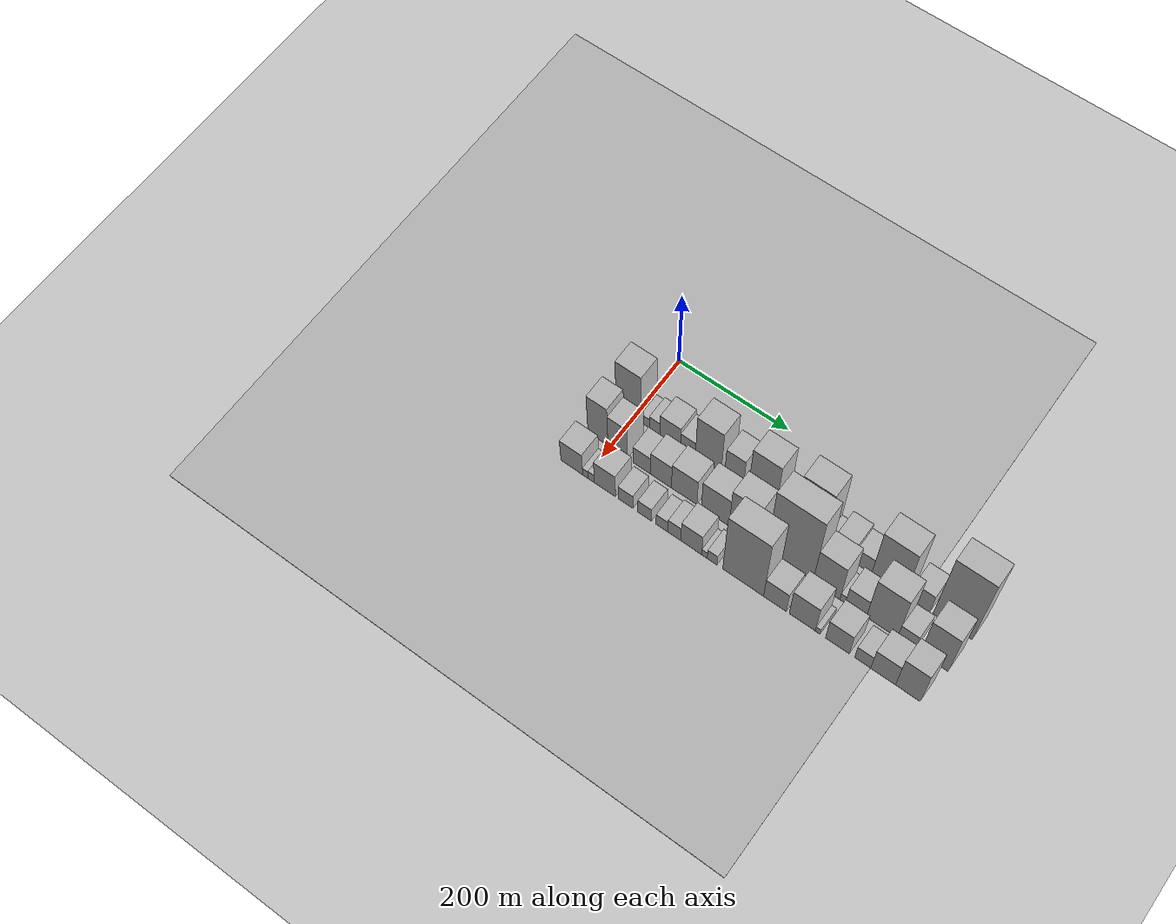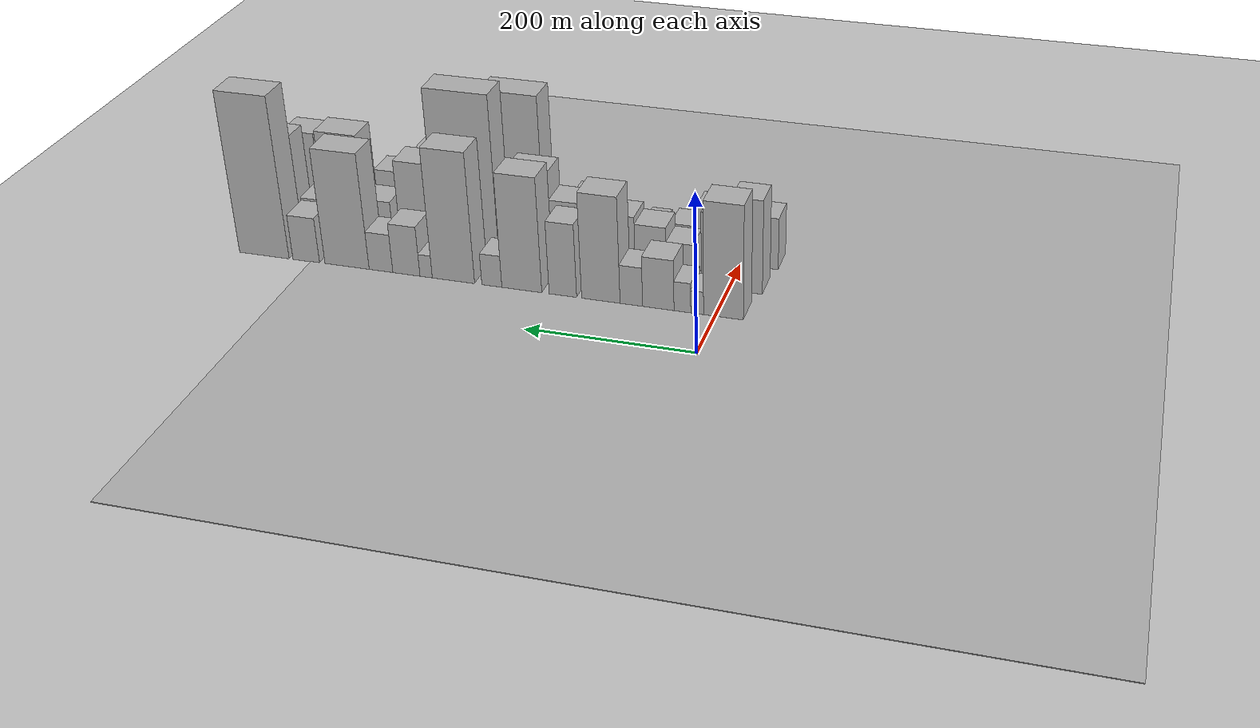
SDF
<sdf version="1.6">
 <world name="default">
  <include><name>ground_plane_1</name><uri>model://HANNAS_ground_plane</uri></include>
  <include>
   <name>ground_plane_2</name>
   <uri>model://HANNAS_ground_plane</uri>
   <pose>100 0 0  0 0 0</pose>
  </include>
  <model name="building_18">
   <static>1</static>
   <pose>100.0000 -9.4550 0 0.000000 0.000000 0.000000</pose>
   <link name="link">
    <pose>0 0 73.50 0 0 0</pose>
    <collision name="collision"><geometry><box><size>40.0000 46.5969 147.0000</size></box></geometry></collision>
    <visual name="visual">
     <cast_shadows>0</cast_shadows>
     <geometry><box><size>40.0000 46.5969 147.0000</size></box></geometry>
     <material>
      <script>
       <uri>model://HANNAS_wall/materials/scripts</uri>
       <uri>model://HANNAS_wall/materials/textures</uri>
       <name>vrc/HANNAS_wall</name>
      </script>
     </material>
    </visual>
   </link>
  </model>
  <model name="building_19">
   <static>1</static>
   <pose>100.0000 21.3931 0 0.000000 0.000000 0.000000</pose>
   <link name="link">
    <pose>0 0 15.00 0 0 0</pose>
    <collision name="collision"><geometry><box><size>40.0000 15.0992 30.0000</size></box></geometry></collision>
    <visual name="visual">
     <cast_shadows>0</cast_shadows>
     <geometry><box><size>40.0000 15.0992 30.0000</size></box></geometry>
     <material>
      <script>
       <uri>model://HANNAS_wall/materials/scripts</uri>
       <uri>model://HANNAS_wall/materials/textures</uri>
       <name>vrc/HANNAS_wall</name>
      </script>
     </material>
    </visual>
   </link>
  </model>
  <model name="building_20">
   <static>1</static>
   <pose>100.0000 38.8198 0 0.000000 0.000000 0.000000</pose>
   <link name="link">
    <pose>0 0 19.50 0 0 0</pose>
    <collision name="collision"><geometry><box><size>40.0000 19.7542 39.0000</size></box></geometry></collision>
    <visual name="visual">
     <cast_shadows>0</cast_shadows>
     <geometry><box><size>40.0000 19.7542 39.0000</size></box></geometry>
     <material>
      <script>
       <uri>model://HANNAS_wall/materials/scripts</uri>
       <uri>model://HANNAS_wall/materials/textures</uri>
       <name>vrc/HANNAS_wall</name>
      </script>
     </material>
    </visual>
   </link>
  </model>
  <model name="building_21">
   <static>1</static>
   <pose>100.0000 67.3922 0 0.000000 0.000000 0.000000</pose>
   <link name="link">
    <pose>0 0 33.00 0 0 0</pose>
    <collision name="collision"><geometry><box><size>40.0000 37.3905 66.0000</size></box></geometry></collision>
    <visual name="visual">
     <cast_shadows>0</cast_shadows>
     <geometry><box><size>40.0000 37.3905 66.0000</size></box></geometry>
     <material>
      <script>
       <uri>model://HANNAS_wall/materials/scripts</uri>
       <uri>model://HANNAS_wall/materials/textures</uri>
       <name>vrc/HANNAS_wall</name>
      </script>
     </material>
    </visual>
   </link>
  </model>
  <model name="building_22">
   <static>1</static>
   <pose>100.0000 99.5906 0 0.000000 0.000000 0.000000</pose>
   <link name="link">
    <pose>0 0 25.50 0 0 0</pose>
    <collision name="collision"><geometry><box><size>40.0000 27.0063 51.0000</size></box></geometry></collision>
    <visual name="visual">
     <cast_shadows>0</cast_shadows>
     <geometry><box><size>40.0000 27.0063 51.0000</size></box></geometry>
     <material>
      <script>
       <uri>model://HANNAS_wall/materials/scripts</uri>
       <uri>model://HANNAS_wall/materials/textures</uri>
       <name>vrc/HANNAS_wall</name>
      </script>
     </material>
    </visual>
   </link>
  </model>
  <model name="building_23">
   <static>1</static>
   <pose>100.0000 136.3201 0 0.000000 0.000000 0.000000</pose>
   <link name="link">
    <pose>0 0 69.00 0 0 0</pose>
    <collision name="collision"><geometry><box><size>40.0000 46.4527 138.0000</size></box></geometry></collision>
    <visual name="visual">
     <cast_shadows>0</cast_shadows>
     <geometry><box><size>40.0000 46.4527 138.0000</size></box></geometry>
     <material>
      <script>
       <uri>model://HANNAS_wall/materials/scripts</uri>
       <uri>model://HANNAS_wall/materials/textures</uri>
       <name>vrc/HANNAS_wall</name>
      </script>
     </material>
    </visual>
   </link>
  </model>
  <model name="building_24">
   <static>1</static>
   <pose>100.0000 182.3514 0 0.000000 0.000000 0.000000</pose>
   <link name="link">
    <pose>0 0 48.00 0 0 0</pose>
    <collision name="collision"><geometry><box><size>40.0000 33.6099 96.0000</size></box></geometry></collision>
    <visual name="visual">
     <cast_shadows>0</cast_shadows>
     <geometry><box><size>40.0000 33.6099 96.0000</size></box></geometry>
     <material>
      <script>
       <uri>model://HANNAS_wall/materials/scripts</uri>
       <uri>model://HANNAS_wall/materials/textures</uri>
       <name>vrc/HANNAS_wall</name>
      </script>
     </material>
    </visual>
   </link>
  </model>
  <model name="building_25">
   <static>1</static>
   <pose>100.0000 232.7722 0 0.000000 0.000000 0.000000</pose>
   <link name="link">
    <pose>0 0 75.00 0 0 0</pose>
    <collision name="collision"><geometry><box><size>40.0000 49.2317 150.0000</size></box></geometry></collision>
    <visual name="visual">
     <cast_shadows>0</cast_shadows>
     <geometry><box><size>40.0000 49.2317 150.0000</size></box></geometry>
     <material>
      <script>
       <uri>model://HANNAS_wall/materials/scripts</uri>
       <uri>model://HANNAS_wall/materials/textures</uri>
       <name>vrc/HANNAS_wall</name>
      </script>
     </material>
    </visual>
   </link>
  </model>
  <model name="building_26">
   <static>1</static>
   <pose>100.0000 269.8020 0 0.000000 0.000000 0.000000</pose>
   <link name="link">
    <pose>0 0 21.00 0 0 0</pose>
    <collision name="collision"><geometry><box><size>40.0000 24.8280 42.0000</size></box></geometry></collision>
    <visual name="visual">
     <cast_shadows>0</cast_shadows>
     <geometry><box><size>40.0000 24.8280 42.0000</size></box></geometry>
     <material>
      <script>
       <uri>model://HANNAS_wall/materials/scripts</uri>
       <uri>model://HANNAS_wall/materials/textures</uri>
       <name>vrc/HANNAS_wall</name>
      </script>
     </material>
    </visual>
   </link>
  </model>
  <model name="building_27">
   <static>1</static>
   <pose>100.0000 317.7965 0 0.000000 0.000000 0.000000</pose>
   <link name="link">
    <pose>0 0 85.50 0 0 0</pose>
    <collision name="collision"><geometry><box><size>40.0000 53.1611 171.0000</size></box></geometry></collision>
    <visual name="visual">
     <cast_shadows>0</cast_shadows>
     <geometry><box><size>40.0000 53.1611 171.0000</size></box></geometry>
     <material>
      <script>
       <uri>model://HANNAS_wall/materials/scripts</uri>
       <uri>model://HANNAS_wall/materials/textures</uri>
       <name>vrc/HANNAS_wall</name>
      </script>
     </material>
    </visual>
   </link>
  </model>
  <model name="building_28">
   <static>1</static>
   <pose>100.0000 352.1460 0 0.000000 0.000000 0.000000</pose>
   <link name="link">
    <pose>0 0 15.00 0 0 0</pose>
    <collision name="collision"><geometry><box><size>40.0000 15.5379 30.0000</size></box></geometry></collision>
    <visual name="visual">
     <cast_shadows>0</cast_shadows>
     <geometry><box><size>40.0000 15.5379 30.0000</size></box></geometry>
     <material>
      <script>
       <uri>model://HANNAS_wall/materials/scripts</uri>
       <uri>model://HANNAS_wall/materials/textures</uri>
       <name>vrc/HANNAS_wall</name>
      </script>
     </material>
    </visual>
   </link>
  </model>
  <model name="building_29">
   <static>1</static>
   <pose>100.0000 377.1503 0 0.000000 0.000000 0.000000</pose>
   <link name="link">
    <pose>0 0 33.00 0 0 0</pose>
    <collision name="collision"><geometry><box><size>40.0000 34.4706 66.0000</size></box></geometry></collision>
    <visual name="visual">
     <cast_shadows>0</cast_shadows>
     <geometry><box><size>40.0000 34.4706 66.0000</size></box></geometry>
     <material>
      <script>
       <uri>model://HANNAS_wall/materials/scripts</uri>
       <uri>model://HANNAS_wall/materials/textures</uri>
       <name>vrc/HANNAS_wall</name>
      </script>
     </material>
    </visual>
   </link>
  </model>
  <model name="building_30">
   <static>1</static>
   <pose>100.0000 409.5093 0 0.000000 0.000000 0.000000</pose>
   <link name="link">
    <pose>0 0 25.50 0 0 0</pose>
    <collision name="collision"><geometry><box><size>40.0000 30.2474 51.0000</size></box></geometry></collision>
    <visual name="visual">
     <cast_shadows>0</cast_shadows>
     <geometry><box><size>40.0000 30.2474 51.0000</size></box></geometry>
     <material>
      <script>
       <uri>model://HANNAS_wall/materials/scripts</uri>
       <uri>model://HANNAS_wall/materials/textures</uri>
       <name>vrc/HANNAS_wall</name>
      </script>
     </material>
    </visual>
   </link>
  </model>
  <model name="building_31">
   <static>1</static>
   <pose>100.0000 453.1934 0 0.000000 0.000000 0.000000</pose>
   <link name="link">
    <pose>0 0 76.50 0 0 0</pose>
    <collision name="collision"><geometry><box><size>40.0000 57.1208 153.0000</size></box></geometry></collision>
    <visual name="visual">
     <cast_shadows>0</cast_shadows>
     <geometry><box><size>40.0000 57.1208 153.0000</size></box></geometry>
     <material>
      <script>
       <uri>model://HANNAS_wall/materials/scripts</uri>
       <uri>model://HANNAS_wall/materials/textures</uri>
       <name>vrc/HANNAS_wall</name>
      </script>
     </material>
    </visual>
   </link>
  </model>
  <model name="building_32">
   <static>1</static>
   <pose>100.0000 506.1167 0 0.000000 0.000000 0.000000</pose>
   <link name="link">
    <pose>0 0 30.00 0 0 0</pose>
    <collision name="collision"><geometry><box><size>40.0000 34.7259 60.0000</size></box></geometry></collision>
    <visual name="visual">
     <cast_shadows>0</cast_shadows>
     <geometry><box><size>40.0000 34.7259 60.0000</size></box></geometry>
     <material>
      <script>
       <uri>model://HANNAS_wall/materials/scripts</uri>
       <uri>model://HANNAS_wall/materials/textures</uri>
       <name>vrc/HANNAS_wall</name>
      </script>
     </material>
    </visual>
   </link>
  </model>
  <model name="building_33">
   <static>1</static>
   <pose>100.0000 561.1260 0 0.000000 0.000000 0.000000</pose>
   <link name="link">
    <pose>0 0 106.50 0 0 0</pose>
    <collision name="collision"><geometry><box><size>40.0000 65.2927 213.0000</size></box></geometry></collision>
    <visual name="visual">
     <cast_shadows>0</cast_shadows>
     <geometry><box><size>40.0000 65.2927 213.0000</size></box></geometry>
     <material>
      <script>
       <uri>model://HANNAS_wall/materials/scripts</uri>
       <uri>model://HANNAS_wall/materials/textures</uri>
       <name>vrc/HANNAS_wall</name>
      </script>
     </material>
    </visual>
   </link>
  </model>
  <model name="building_51">
   <static>1</static>
   <pose>160.0000 -22.2332 0 0.000000 0.000000 0.000000</pose>
   <link name="link">
    <pose>0 0 61.50 0 0 0</pose>
    <collision name="collision"><geometry><box><size>40.0000 37.0480 123.0000</size></box></geometry></collision>
    <visual name="visual">
     <cast_shadows>0</cast_shadows>
     <geometry><box><size>40.0000 37.0480 123.0000</size></box></geometry>
     <material>
      <script>
       <uri>model://HANNAS_wall/materials/scripts</uri>
       <uri>model://HANNAS_wall/materials/textures</uri>
       <name>vrc/HANNAS_wall</name>
      </script>
     </material>
    </visual>
   </link>
  </model>
  <model name="building_52">
   <static>1</static>
   <pose>160.0000 14.3286 0 0.000000 0.000000 0.000000</pose>
   <link name="link">
    <pose>0 0 49.50 0 0 0</pose>
    <collision name="collision"><geometry><box><size>40.0000 36.0754 99.0000</size></box></geometry></collision>
    <visual name="visual">
     <cast_shadows>0</cast_shadows>
     <geometry><box><size>40.0000 36.0754 99.0000</size></box></geometry>
     <material>
      <script>
       <uri>model://HANNAS_wall/materials/scripts</uri>
       <uri>model://HANNAS_wall/materials/textures</uri>
       <name>vrc/HANNAS_wall</name>
      </script>
     </material>
    </visual>
   </link>
  </model>
  <model name="building_53">
   <static>1</static>
   <pose>160.0000 58.4407 0 0.000000 0.000000 0.000000</pose>
   <link name="link">
    <pose>0 0 27.00 0 0 0</pose>
    <collision name="collision"><geometry><box><size>40.0000 32.1488 54.0000</size></box></geometry></collision>
    <visual name="visual">
     <cast_shadows>0</cast_shadows>
     <geometry><box><size>40.0000 32.1488 54.0000</size></box></geometry>
     <material>
      <script>
       <uri>model://HANNAS_wall/materials/scripts</uri>
       <uri>model://HANNAS_wall/materials/textures</uri>
       <name>vrc/HANNAS_wall</name>
      </script>
     </material>
    </visual>
   </link>
  </model>
  <model name="building_54">
   <static>1</static>
   <pose>160.0000 93.5560 0 0.000000 0.000000 0.000000</pose>
   <link name="link">
    <pose>0 0 36.00 0 0 0</pose>
    <collision name="collision"><geometry><box><size>40.0000 38.0818 72.0000</size></box></geometry></collision>
    <visual name="visual">
     <cast_shadows>0</cast_shadows>
     <geometry><box><size>40.0000 38.0818 72.0000</size></box></geometry>
     <material>
      <script>
       <uri>model://HANNAS_wall/materials/scripts</uri>
       <uri>model://HANNAS_wall/materials/textures</uri>
       <name>vrc/HANNAS_wall</name>
      </script>
     </material>
    </visual>
   </link>
  </model>
  <model name="building_55">
   <static>1</static>
   <pose>160.0000 135.5152 0 0.000000 0.000000 0.000000</pose>
   <link name="link">
    <pose>0 0 40.50 0 0 0</pose>
    <collision name="collision"><geometry><box><size>40.0000 45.8366 81.0000</size></box></geometry></collision>
    <visual name="visual">
     <cast_shadows>0</cast_shadows>
     <geometry><box><size>40.0000 45.8366 81.0000</size></box></geometry>
     <material>
      <script>
       <uri>model://HANNAS_wall/materials/scripts</uri>
       <uri>model://HANNAS_wall/materials/textures</uri>
       <name>vrc/HANNAS_wall</name>
      </script>
     </material>
    </visual>
   </link>
  </model>
  <model name="building_56">
   <static>1</static>
   <pose>160.0000 191.2024 0 0.000000 0.000000 0.000000</pose>
   <link name="link">
    <pose>0 0 45.00 0 0 0</pose>
    <collision name="collision"><geometry><box><size>40.0000 49.5378 90.0000</size></box></geometry></collision>
    <visual name="visual">
     <cast_shadows>0</cast_shadows>
     <geometry><box><size>40.0000 49.5378 90.0000</size></box></geometry>
     <material>
      <script>
       <uri>model://HANNAS_wall/materials/scripts</uri>
       <uri>model://HANNAS_wall/materials/textures</uri>
       <name>vrc/HANNAS_wall</name>
      </script>
     </material>
    </visual>
   </link>
  </model>
  <model name="building_57">
   <static>1</static>
   <pose>160.0000 241.1132 0 0.000000 0.000000 0.000000</pose>
   <link name="link">
    <pose>0 0 63.00 0 0 0</pose>
    <collision name="collision"><geometry><box><size>40.0000 50.2837 126.0000</size></box></geometry></collision>
    <visual name="visual">
     <cast_shadows>0</cast_shadows>
     <geometry><box><size>40.0000 50.2837 126.0000</size></box></geometry>
     <material>
      <script>
       <uri>model://HANNAS_wall/materials/scripts</uri>
       <uri>model://HANNAS_wall/materials/textures</uri>
       <name>vrc/HANNAS_wall</name>
      </script>
     </material>
    </visual>
   </link>
  </model>
  <model name="building_58">
   <static>1</static>
   <pose>160.0000 274.6983 0 0.000000 0.000000 0.000000</pose>
   <link name="link">
    <pose>0 0 16.50 0 0 0</pose>
    <collision name="collision"><geometry><box><size>40.0000 16.8865 33.0000</size></box></geometry></collision>
    <visual name="visual">
     <cast_shadows>0</cast_shadows>
     <geometry><box><size>40.0000 16.8865 33.0000</size></box></geometry>
     <material>
      <script>
       <uri>model://HANNAS_wall/materials/scripts</uri>
       <uri>model://HANNAS_wall/materials/textures</uri>
       <name>vrc/HANNAS_wall</name>
      </script>
     </material>
    </visual>
   </link>
  </model>
  <model name="building_59">
   <static>1</static>
   <pose>160.0000 323.0749 0 0.000000 0.000000 0.000000</pose>
   <link name="link">
    <pose>0 0 108.00 0 0 0</pose>
    <collision name="collision"><geometry><box><size>40.0000 79.8668 216.0000</size></box></geometry></collision>
    <visual name="visual">
     <cast_shadows>0</cast_shadows>
     <geometry><box><size>40.0000 79.8668 216.0000</size></box></geometry>
     <material>
      <script>
       <uri>model://HANNAS_wall/materials/scripts</uri>
       <uri>model://HANNAS_wall/materials/textures</uri>
       <name>vrc/HANNAS_wall</name>
      </script>
     </material>
    </visual>
   </link>
  </model>
  <model name="building_60">
   <static>1</static>
   <pose>160.0000 386.0274 0 0.000000 0.000000 0.000000</pose>
   <link name="link">
    <pose>0 0 58.50 0 0 0</pose>
    <collision name="collision"><geometry><box><size>40.0000 46.0381 117.0000</size></box></geometry></collision>
    <visual name="visual">
     <cast_shadows>0</cast_shadows>
     <geometry><box><size>40.0000 46.0381 117.0000</size></box></geometry>
     <material>
      <script>
       <uri>model://HANNAS_wall/materials/scripts</uri>
       <uri>model://HANNAS_wall/materials/textures</uri>
       <name>vrc/HANNAS_wall</name>
      </script>
     </material>
    </visual>
   </link>
  </model>
  <model name="building_61">
   <static>1</static>
   <pose>160.0000 413.8816 0 0.000000 0.000000 0.000000</pose>
   <link name="link">
    <pose>0 0 12.00 0 0 0</pose>
    <collision name="collision"><geometry><box><size>40.0000 9.6703 24.0000</size></box></geometry></collision>
    <visual name="visual">
     <cast_shadows>0</cast_shadows>
     <geometry><box><size>40.0000 9.6703 24.0000</size></box></geometry>
     <material>
      <script>
       <uri>model://HANNAS_wall/materials/scripts</uri>
       <uri>model://HANNAS_wall/materials/textures</uri>
       <name>vrc/HANNAS_wall</name>
      </script>
     </material>
    </visual>
   </link>
  </model>
  <model name="building_62">
   <static>1</static>
   <pose>160.0000 436.4338 0 0.000000 0.000000 0.000000</pose>
   <link name="link">
    <pose>0 0 30.00 0 0 0</pose>
    <collision name="collision"><geometry><box><size>40.0000 35.4341 60.0000</size></box></geometry></collision>
    <visual name="visual">
     <cast_shadows>0</cast_shadows>
     <geometry><box><size>40.0000 35.4341 60.0000</size></box></geometry>
     <material>
      <script>
       <uri>model://HANNAS_wall/materials/scripts</uri>
       <uri>model://HANNAS_wall/materials/textures</uri>
       <name>vrc/HANNAS_wall</name>
      </script>
     </material>
    </visual>
   </link>
  </model>
  <model name="building_63">
   <static>1</static>
   <pose>160.0000 480.3982 0 0.000000 0.000000 0.000000</pose>
   <link name="link">
    <pose>0 0 72.00 0 0 0</pose>
    <collision name="collision"><geometry><box><size>40.0000 52.4947 144.0000</size></box></geometry></collision>
    <visual name="visual">
     <cast_shadows>0</cast_shadows>
     <geometry><box><size>40.0000 52.4947 144.0000</size></box></geometry>
     <material>
      <script>
       <uri>model://HANNAS_wall/materials/scripts</uri>
       <uri>model://HANNAS_wall/materials/textures</uri>
       <name>vrc/HANNAS_wall</name>
      </script>
     </material>
    </visual>
   </link>
  </model>
  <model name="building_64">
   <static>1</static>
   <pose>160.0000 521.5439 0 0.000000 0.000000 0.000000</pose>
   <link name="link">
    <pose>0 0 25.50 0 0 0</pose>
    <collision name="collision"><geometry><box><size>40.0000 29.7968 51.0000</size></box></geometry></collision>
    <visual name="visual">
     <cast_shadows>0</cast_shadows>
     <geometry><box><size>40.0000 29.7968 51.0000</size></box></geometry>
     <material>
      <script>
       <uri>model://HANNAS_wall/materials/scripts</uri>
       <uri>model://HANNAS_wall/materials/textures</uri>
       <name>vrc/HANNAS_wall</name>
      </script>
     </material>
    </visual>
   </link>
  </model>
  <model name="building_65">
   <static>1</static>
   <pose>160.0000 567.6421 0 0.000000 0.000000 0.000000</pose>
   <link name="link">
    <pose>0 0 64.50 0 0 0</pose>
    <collision name="collision"><geometry><box><size>40.0000 46.3996 129.0000</size></box></geometry></collision>
    <visual name="visual">
     <cast_shadows>0</cast_shadows>
     <geometry><box><size>40.0000 46.3996 129.0000</size></box></geometry>
     <material>
      <script>
       <uri>model://HANNAS_wall/materials/scripts</uri>
       <uri>model://HANNAS_wall/materials/textures</uri>
       <name>vrc/HANNAS_wall</name>
      </script>
     </material>
    </visual>
   </link>
  </model>
  <model name="building_82">
   <static>1</static>
   <pose>220.0000 -25.9432 0 0.000000 0.000000 0.000000</pose>
   <link name="link">
    <pose>0 0 34.50 0 0 0</pose>
    <collision name="collision"><geometry><box><size>40.0000 40.1114 69.0000</size></box></geometry></collision>
    <visual name="visual">
     <cast_shadows>0</cast_shadows>
     <geometry><box><size>40.0000 40.1114 69.0000</size></box></geometry>
     <material>
      <script>
       <uri>model://HANNAS_wall/materials/scripts</uri>
       <uri>model://HANNAS_wall/materials/textures</uri>
       <name>vrc/HANNAS_wall</name>
      </script>
     </material>
    </visual>
   </link>
  </model>
  <model name="building_83">
   <static>1</static>
   <pose>220.0000 -0.6348 0 0.000000 0.000000 0.000000</pose>
   <link name="link">
    <pose>0 0 12.00 0 0 0</pose>
    <collision name="collision"><geometry><box><size>40.0000 10.5053 24.0000</size></box></geometry></collision>
    <visual name="visual">
     <cast_shadows>0</cast_shadows>
     <geometry><box><size>40.0000 10.5053 24.0000</size></box></geometry>
     <material>
      <script>
       <uri>model://HANNAS_wall/materials/scripts</uri>
       <uri>model://HANNAS_wall/materials/textures</uri>
       <name>vrc/HANNAS_wall</name>
      </script>
     </material>
    </visual>
   </link>
  </model>
  <model name="building_84">
   <static>1</static>
   <pose>220.0000 10.1828 0 0.000000 0.000000 0.000000</pose>
   <link name="link">
    <pose>0 0 13.50 0 0 0</pose>
    <collision name="collision"><geometry><box><size>40.0000 11.1299 27.0000</size></box></geometry></collision>
    <visual name="visual">
     <cast_shadows>0</cast_shadows>
     <geometry><box><size>40.0000 11.1299 27.0000</size></box></geometry>
     <material>
      <script>
       <uri>model://HANNAS_wall/materials/scripts</uri>
       <uri>model://HANNAS_wall/materials/textures</uri>
       <name>vrc/HANNAS_wall</name>
      </script>
     </material>
    </visual>
   </link>
  </model>
  <model name="building_85">
   <static>1</static>
   <pose>220.0000 35.1063 0 0.000000 0.000000 0.000000</pose>
   <link name="link">
    <pose>0 0 36.00 0 0 0</pose>
    <collision name="collision"><geometry><box><size>40.0000 38.7172 72.0000</size></box></geometry></collision>
    <visual name="visual">
     <cast_shadows>0</cast_shadows>
     <geometry><box><size>40.0000 38.7172 72.0000</size></box></geometry>
     <material>
      <script>
       <uri>model://HANNAS_wall/materials/scripts</uri>
       <uri>model://HANNAS_wall/materials/textures</uri>
       <name>vrc/HANNAS_wall</name>
      </script>
     </material>
    </visual>
   </link>
  </model>
  <model name="building_86">
   <static>1</static>
   <pose>220.0000 72.7952 0 0.000000 0.000000 0.000000</pose>
   <link name="link">
    <pose>0 0 22.50 0 0 0</pose>
    <collision name="collision"><geometry><box><size>40.0000 26.6606 45.0000</size></box></geometry></collision>
    <visual name="visual">
     <cast_shadows>0</cast_shadows>
     <geometry><box><size>40.0000 26.6606 45.0000</size></box></geometry>
     <material>
      <script>
       <uri>model://HANNAS_wall/materials/scripts</uri>
       <uri>model://HANNAS_wall/materials/textures</uri>
       <name>vrc/HANNAS_wall</name>
      </script>
     </material>
    </visual>
   </link>
  </model>
  <model name="building_87">
   <static>1</static>
   <pose>220.0000 107.5004 0 0.000000 0.000000 0.000000</pose>
   <link name="link">
    <pose>0 0 21.00 0 0 0</pose>
    <collision name="collision"><geometry><box><size>40.0000 24.7497 42.0000</size></box></geometry></collision>
    <visual name="visual">
     <cast_shadows>0</cast_shadows>
     <geometry><box><size>40.0000 24.7497 42.0000</size></box></geometry>
     <material>
      <script>
       <uri>model://HANNAS_wall/materials/scripts</uri>
       <uri>model://HANNAS_wall/materials/textures</uri>
       <name>vrc/HANNAS_wall</name>
      </script>
     </material>
    </visual>
   </link>
  </model>
  <model name="building_88">
   <static>1</static>
   <pose>220.0000 138.5239 0 0.000000 0.000000 0.000000</pose>
   <link name="link">
    <pose>0 0 18.00 0 0 0</pose>
    <collision name="collision"><geometry><box><size>40.0000 21.2973 36.0000</size></box></geometry></collision>
    <visual name="visual">
     <cast_shadows>0</cast_shadows>
     <geometry><box><size>40.0000 21.2973 36.0000</size></box></geometry>
     <material>
      <script>
       <uri>model://HANNAS_wall/materials/scripts</uri>
       <uri>model://HANNAS_wall/materials/textures</uri>
       <name>vrc/HANNAS_wall</name>
      </script>
     </material>
    </visual>
   </link>
  </model>
  <model name="building_89">
   <static>1</static>
   <pose>220.0000 160.6570 0 0.000000 0.000000 0.000000</pose>
   <link name="link">
    <pose>0 0 22.50 0 0 0</pose>
    <collision name="collision"><geometry><box><size>40.0000 22.9689 45.0000</size></box></geometry></collision>
    <visual name="visual">
     <cast_shadows>0</cast_shadows>
     <geometry><box><size>40.0000 22.9689 45.0000</size></box></geometry>
     <material>
      <script>
       <uri>model://HANNAS_wall/materials/scripts</uri>
       <uri>model://HANNAS_wall/materials/textures</uri>
       <name>vrc/HANNAS_wall</name>
      </script>
     </material>
    </visual>
   </link>
  </model>
  <model name="building_90">
   <static>1</static>
   <pose>220.0000 190.7576 0 0.000000 0.000000 0.000000</pose>
   <link name="link">
    <pose>0 0 33.00 0 0 0</pose>
    <collision name="collision"><geometry><box><size>40.0000 37.2323 66.0000</size></box></geometry></collision>
    <visual name="visual">
     <cast_shadows>0</cast_shadows>
     <geometry><box><size>40.0000 37.2323 66.0000</size></box></geometry>
     <material>
      <script>
       <uri>model://HANNAS_wall/materials/scripts</uri>
       <uri>model://HANNAS_wall/materials/textures</uri>
       <name>vrc/HANNAS_wall</name>
      </script>
     </material>
    </visual>
   </link>
  </model>
  <model name="building_91">
   <static>1</static>
   <pose>220.0000 214.3177 0 0.000000 0.000000 0.000000</pose>
   <link name="link">
    <pose>0 0 10.50 0 0 0</pose>
    <collision name="collision"><geometry><box><size>40.0000 9.8878 21.0000</size></box></geometry></collision>
    <visual name="visual">
     <cast_shadows>0</cast_shadows>
     <geometry><box><size>40.0000 9.8878 21.0000</size></box></geometry>
     <material>
      <script>
       <uri>model://HANNAS_wall/materials/scripts</uri>
       <uri>model://HANNAS_wall/materials/textures</uri>
       <name>vrc/HANNAS_wall</name>
      </script>
     </material>
    </visual>
   </link>
  </model>
  <model name="building_92">
   <static>1</static>
   <pose>220.0000 227.9032 0 0.000000 0.000000 0.000000</pose>
   <link name="link">
    <pose>0 0 16.50 0 0 0</pose>
    <collision name="collision"><geometry><box><size>40.0000 17.2833 33.0000</size></box></geometry></collision>
    <visual name="visual">
     <cast_shadows>0</cast_shadows>
     <geometry><box><size>40.0000 17.2833 33.0000</size></box></geometry>
     <material>
      <script>
       <uri>model://HANNAS_wall/materials/scripts</uri>
       <uri>model://HANNAS_wall/materials/textures</uri>
       <name>vrc/HANNAS_wall</name>
      </script>
     </material>
    </visual>
   </link>
  </model>
  <model name="building_93">
   <static>1</static>
   <pose>220.0000 282.2115 0 0.000000 0.000000 0.000000</pose>
   <link name="link">
    <pose>0 0 96.00 0 0 0</pose>
    <collision name="collision"><geometry><box><size>40.0000 71.3332 192.0000</size></box></geometry></collision>
    <visual name="visual">
     <cast_shadows>0</cast_shadows>
     <geometry><box><size>40.0000 71.3332 192.0000</size></box></geometry>
     <material>
      <script>
       <uri>model://HANNAS_wall/materials/scripts</uri>
       <uri>model://HANNAS_wall/materials/textures</uri>
       <name>vrc/HANNAS_wall</name>
      </script>
     </material>
    </visual>
   </link>
  </model>
  <model name="building_94">
   <static>1</static>
   <pose>220.0000 337.4950 0 0.000000 0.000000 0.000000</pose>
   <link name="link">
    <pose>0 0 33.00 0 0 0</pose>
    <collision name="collision"><geometry><box><size>40.0000 39.2338 66.0000</size></box></geometry></collision>
    <visual name="visual">
     <cast_shadows>0</cast_shadows>
     <geometry><box><size>40.0000 39.2338 66.0000</size></box></geometry>
     <material>
      <script>
       <uri>model://HANNAS_wall/materials/scripts</uri>
       <uri>model://HANNAS_wall/materials/textures</uri>
       <name>vrc/HANNAS_wall</name>
      </script>
     </material>
    </visual>
   </link>
  </model>
  <model name="building_95">
   <static>1</static>
   <pose>220.0000 384.4709 0 0.000000 0.000000 0.000000</pose>
   <link name="link">
    <pose>0 0 43.50 0 0 0</pose>
    <collision name="collision"><geometry><box><size>40.0000 44.7179 87.0000</size></box></geometry></collision>
    <visual name="visual">
     <cast_shadows>0</cast_shadows>
     <geometry><box><size>40.0000 44.7179 87.0000</size></box></geometry>
     <material>
      <script>
       <uri>model://HANNAS_wall/materials/scripts</uri>
       <uri>model://HANNAS_wall/materials/textures</uri>
       <name>vrc/HANNAS_wall</name>
      </script>
     </material>
    </visual>
   </link>
  </model>
  <model name="building_96">
   <static>1</static>
   <pose>220.0000 410.9642 0 0.000000 0.000000 0.000000</pose>
   <link name="link">
    <pose>0 0 9.00 0 0 0</pose>
    <collision name="collision"><geometry><box><size>40.0000 8.2688 18.0000</size></box></geometry></collision>
    <visual name="visual">
     <cast_shadows>0</cast_shadows>
     <geometry><box><size>40.0000 8.2688 18.0000</size></box></geometry>
     <material>
      <script>
       <uri>model://HANNAS_wall/materials/scripts</uri>
       <uri>model://HANNAS_wall/materials/textures</uri>
       <name>vrc/HANNAS_wall</name>
      </script>
     </material>
    </visual>
   </link>
  </model>
  <model name="building_97">
   <static>1</static>
   <pose>220.0000 444.2224 0 0.000000 0.000000 0.000000</pose>
   <link name="link">
    <pose>0 0 34.50 0 0 0</pose>
    <collision name="collision"><geometry><box><size>40.0000 40.2475 69.0000</size></box></geometry></collision>
    <visual name="visual">
     <cast_shadows>0</cast_shadows>
     <geometry><box><size>40.0000 40.2475 69.0000</size></box></geometry>
     <material>
      <script>
       <uri>model://HANNAS_wall/materials/scripts</uri>
       <uri>model://HANNAS_wall/materials/textures</uri>
       <name>vrc/HANNAS_wall</name>
      </script>
     </material>
    </visual>
   </link>
  </model>
  <model name="building_98">
   <static>1</static>
   <pose>220.0000 486.8141 0 0.000000 0.000000 0.000000</pose>
   <link name="link">
    <pose>0 0 22.50 0 0 0</pose>
    <collision name="collision"><geometry><box><size>40.0000 26.9359 45.0000</size></box></geometry></collision>
    <visual name="visual">
     <cast_shadows>0</cast_shadows>
     <geometry><box><size>40.0000 26.9359 45.0000</size></box></geometry>
     <material>
      <script>
       <uri>model://HANNAS_wall/materials/scripts</uri>
       <uri>model://HANNAS_wall/materials/textures</uri>
       <name>vrc/HANNAS_wall</name>
      </script>
     </material>
    </visual>
   </link>
  </model>
  <model name="building_99">
   <static>1</static>
   <pose>220.0000 520.9174 0 0.000000 0.000000 0.000000</pose>
   <link name="link">
    <pose>0 0 37.50 0 0 0</pose>
    <collision name="collision"><geometry><box><size>40.0000 41.2707 75.0000</size></box></geometry></collision>
    <visual name="visual">
     <cast_shadows>0</cast_shadows>
     <geometry><box><size>40.0000 41.2707 75.0000</size></box></geometry>
     <material>
      <script>
       <uri>model://HANNAS_wall/materials/scripts</uri>
       <uri>model://HANNAS_wall/materials/textures</uri>
       <name>vrc/HANNAS_wall</name>
      </script>
     </material>
    </visual>
   </link>
  </model>
  <model name="building_100">
   <static>1</static>
   <pose>220.0000 561.9378 0 0.000000 0.000000 0.000000</pose>
   <link name="link">
    <pose>0 0 54.00 0 0 0</pose>
    <collision name="collision"><geometry><box><size>40.0000 40.7701 108.0000</size></box></geometry></collision>
    <visual name="visual">
     <cast_shadows>0</cast_shadows>
     <geometry><box><size>40.0000 40.7701 108.0000</size></box></geometry>
     <material>
      <script>
       <uri>model://HANNAS_wall/materials/scripts</uri>
       <uri>model://HANNAS_wall/materials/textures</uri>
       <name>vrc/HANNAS_wall</name>
      </script>
     </material>
    </visual>
   </link>
  </model>
 </world>
</sdf>
